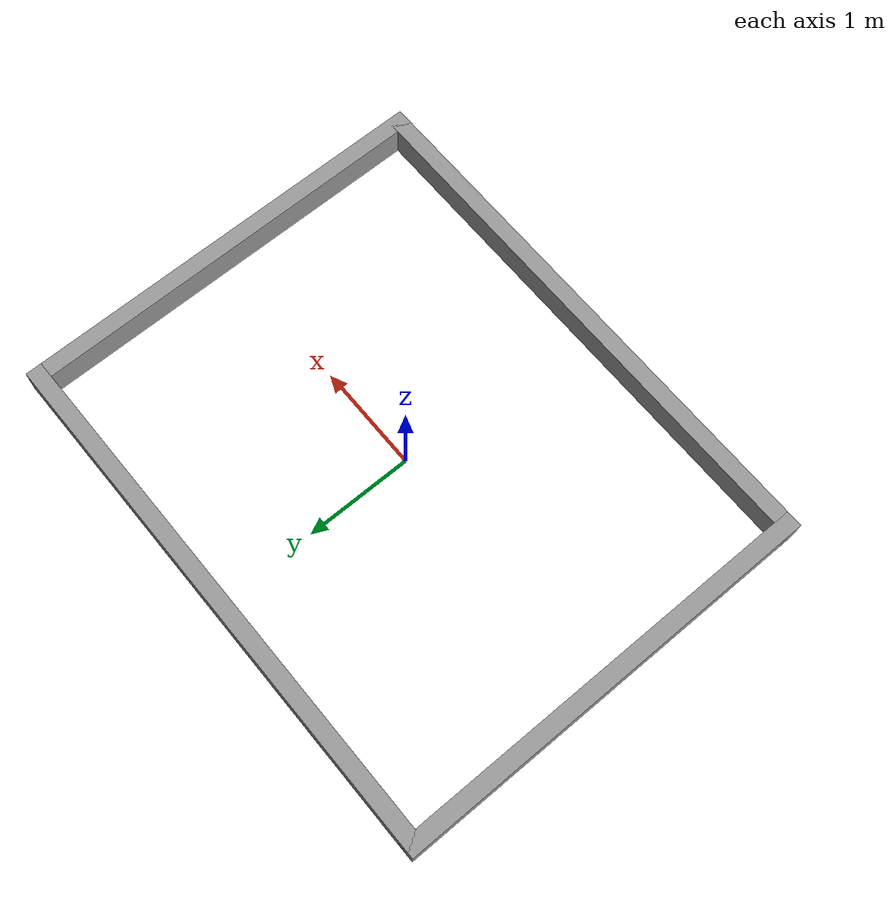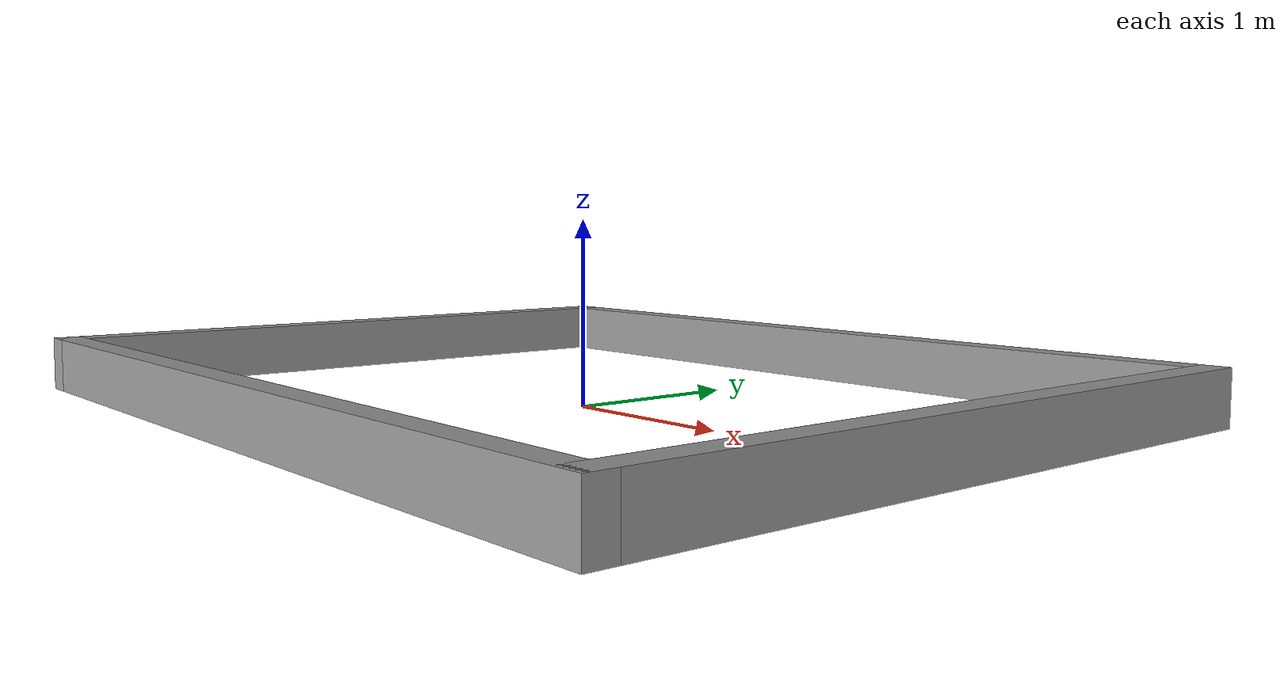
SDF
<?xml version='1.0'?>
<sdf version='1.6'>
  <model name='laboratory'>
    <pose frame=''>0 0 0 0 -0 0</pose>
    <link name='Wall_10'>
      <collision name='Wall_10_Collision'>
        <geometry>
          <box>
            <size>5 0.15 0.3</size>
          </box>
        </geometry>
        <pose frame=''>0 0 0.15 0 -0 0</pose>
      </collision>
      <visual name='Wall_10_Visual'>
        <pose frame=''>0 0 0.15 0 -0 0</pose>
        <geometry>
          <box>
            <size>5 0.15 0.3</size>
          </box>
        </geometry>
        <material>
          <script>
            <uri>file://media/materials/scripts/gazebo.material</uri>
            <name>Gazebo/Grey</name>
          </script>
          <ambient>1 1 1 1</ambient>
        </material>
      </visual>
      <pose frame=''>0 1.925 0 0 -0 0</pose>
    </link>
    <link name='Wall_12'>
      <collision name='Wall_12_Collision'>
        <geometry>
          <box>
            <size>4 0.15 0.3</size>
          </box>
        </geometry>
        <pose frame=''>0 0 0.15 0 -0 0</pose>
      </collision>
      <visual name='Wall_12_Visual'>
        <pose frame=''>0 0 0.15 0 -0 0</pose>
        <geometry>
          <box>
            <size>4 0.15 0.3</size>
          </box>
        </geometry>
        <material>
          <script>
            <uri>file://media/materials/scripts/gazebo.material</uri>
            <name>Gazebo/Grey</name>
          </script>
          <ambient>1 1 1 1</ambient>
        </material>
      </visual>
      <pose frame=''>2.425 0 0 0 0 -1.5708</pose>
    </link>
    <link name='Wall_13'>
      <collision name='Wall_13_Collision'>
        <geometry>
          <box>
            <size>5 0.15 0.3</size>
          </box>
        </geometry>
        <pose frame=''>0 0 0.15 0 -0 0</pose>
      </collision>
      <visual name='Wall_13_Visual'>
        <pose frame=''>0 0 0.15 0 -0 0</pose>
        <geometry>
          <box>
            <size>5 0.15 0.3</size>
          </box>
        </geometry>
        <material>
          <script>
            <uri>file://media/materials/scripts/gazebo.material</uri>
            <name>Gazebo/Grey</name>
          </script>
          <ambient>1 1 1 1</ambient>
        </material>
      </visual>
      <pose frame=''>0 -1.925 0 0 -0 3.14159</pose>
    </link>
    <link name='Wall_14'>
      <collision name='Wall_14_Collision'>
        <geometry>
          <box>
            <size>4 0.15 0.3</size>
          </box>
        </geometry>
        <pose frame=''>0 0 0.15 0 -0 0</pose>
      </collision>
      <visual name='Wall_14_Visual'>
        <pose frame=''>0 0 0.15 0 -0 0</pose>
        <geometry>
          <box>
            <size>4 0.15 0.3</size>
          </box>
        </geometry>
        <material>
          <script>
            <uri>file://media/materials/scripts/gazebo.material</uri>
            <name>Gazebo/Grey</name>
          </script>
          <ambient>1 1 1 1</ambient>
        </material>
      </visual>
      <pose frame=''>-2.425 0 0 0 -0 1.5708</pose>
    </link>
    <static>1</static>
  </model>
</sdf>
